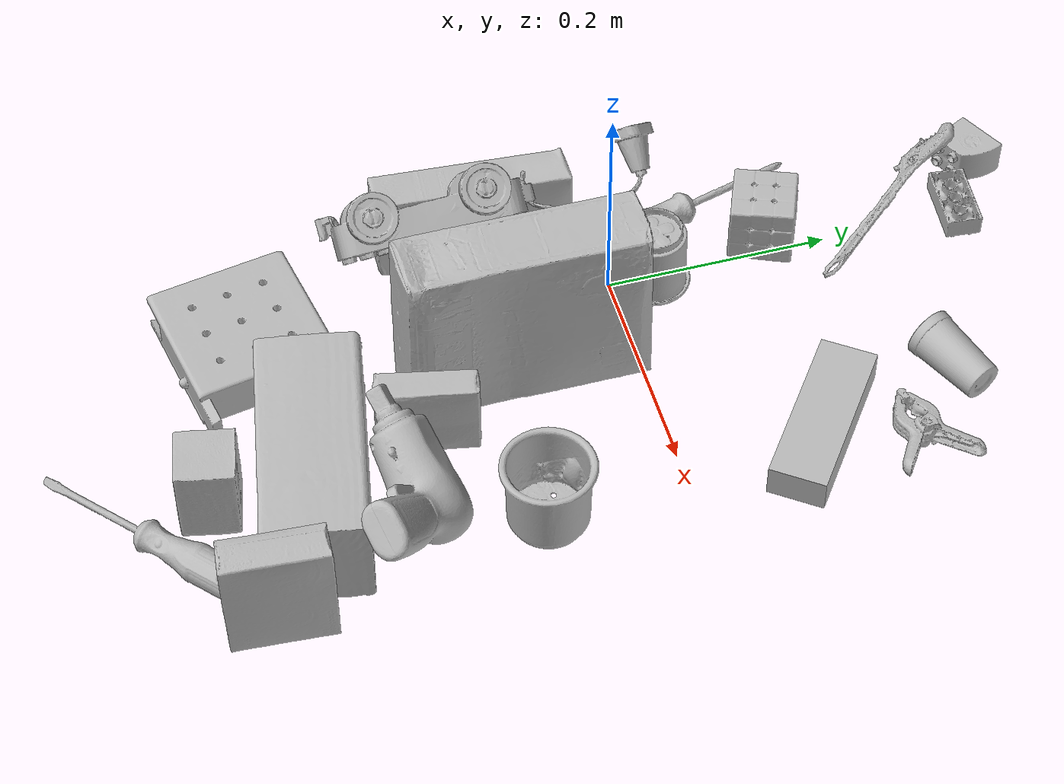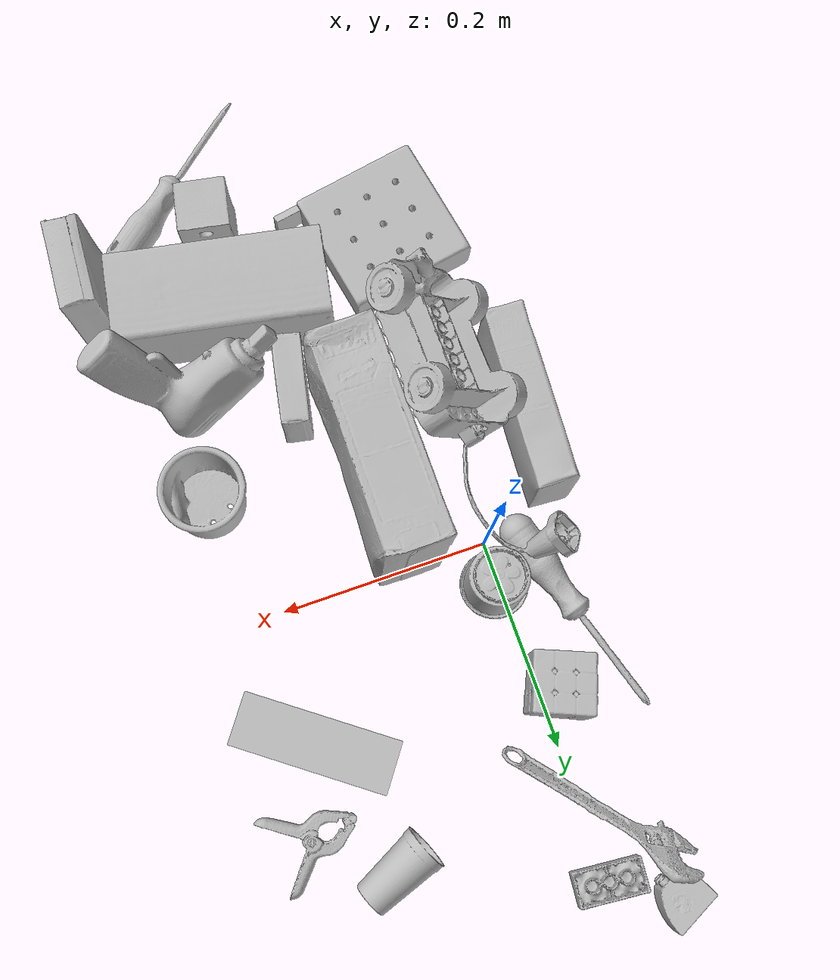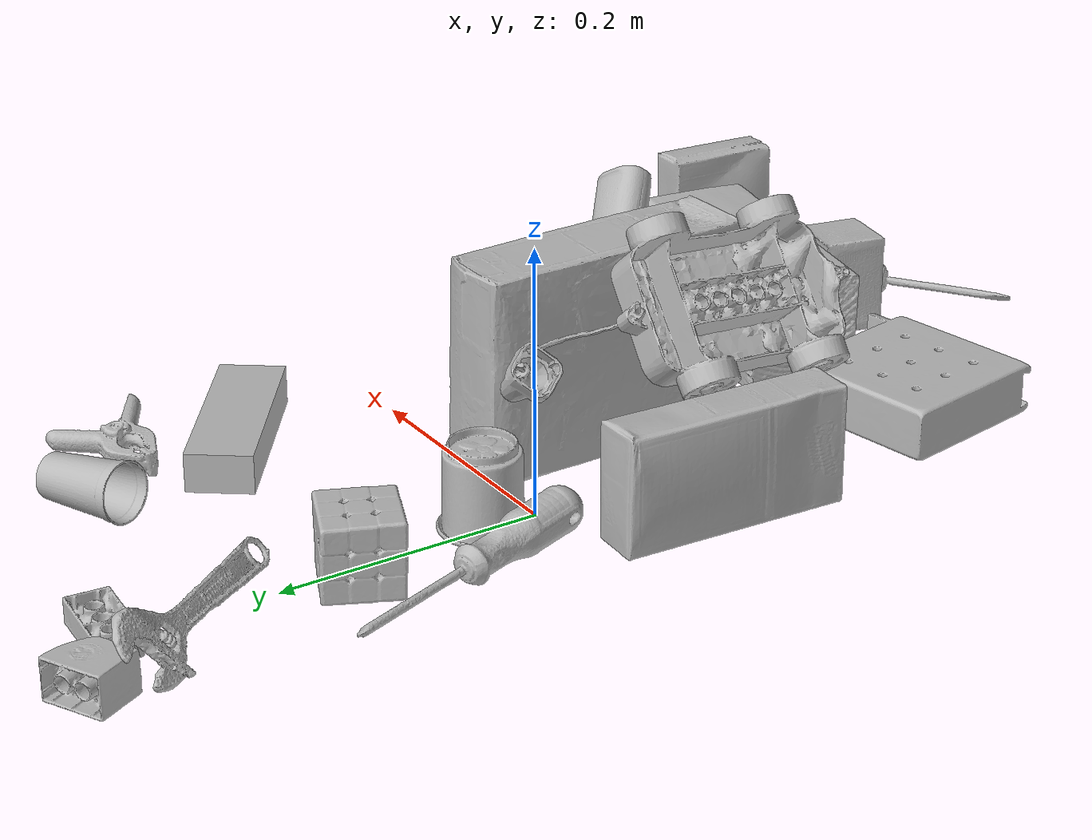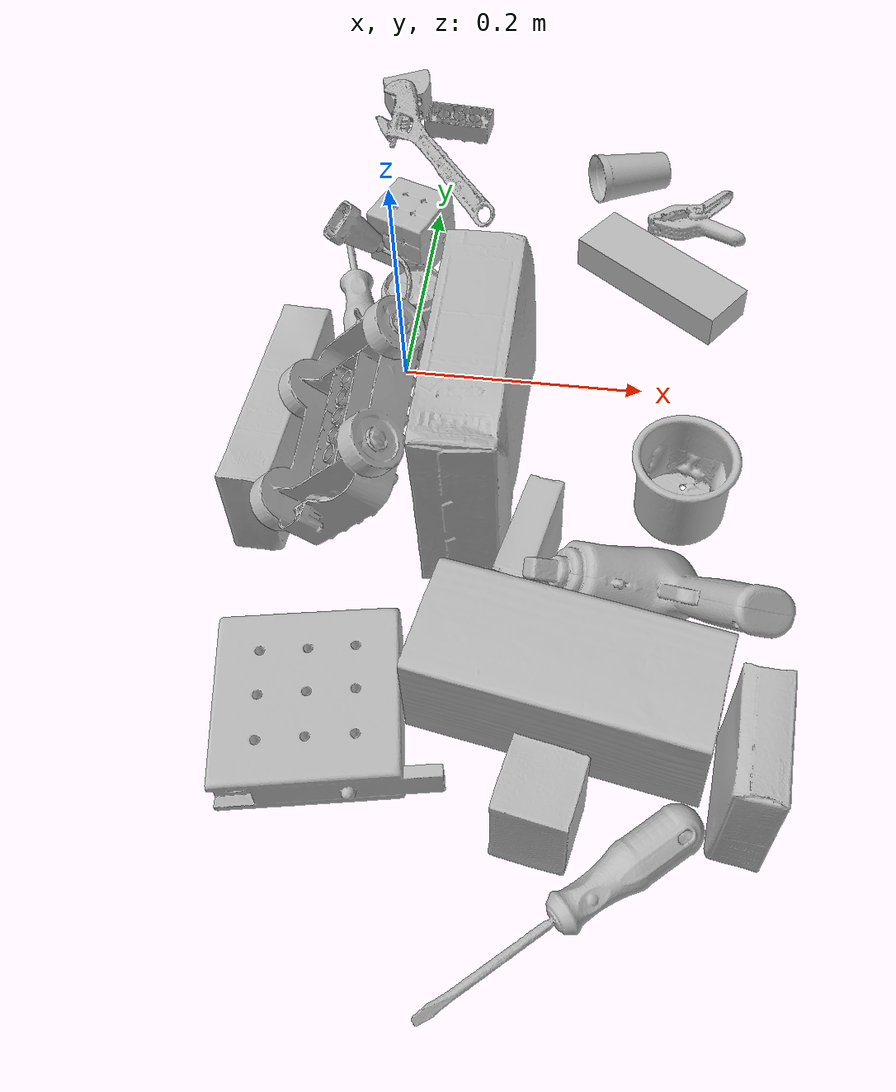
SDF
<sdf version="1.4">
  <world name="default">
    <light name="light1" type="point">
      <pose>0 0 1 0 0 0</pose>
      <diffuse>3 3 3 1</diffuse>
      <specular>3 3 3 1</specular>
    </light>
    <light name="light2" type="point">
      <pose>0 0.5 2 0 0 0</pose>
      <diffuse>1 1 1 1</diffuse>
      <specular>1 1 1 1</specular>
    </light>
    <light name="light3" type="point">
      <pose>0 0.5 2 0 0 0</pose>
      <diffuse>3 3 3 1</diffuse>
      <specular>3 3 3 1</specular>
    </light>
    <scene>
      <ambient>0.7 0.7 0.7</ambient>
    </scene>
    <model name="box21">
      <link name="link_box21">
        <collision name="default">
          <geometry>
            <mesh>
              <uri>model://cracker_box/collision_meshes/collision.obj</uri>
              <scale>1.0 1.0 1.0</scale>
            </mesh>
          </geometry>
          <surface>
            <friction>
              <ode>
                <mu>0.5</mu>
                <mu2>0.5</mu2>
              </ode>
            </friction>
          <contact>
        <ode>
            <max_vel>0</max_vel>
            <min_depth>0.0001</min_depth>
            <kp>1e8</kp>
        </ode>
    </contact></surface>
        </collision>
        <visual name="default">
          <geometry>
            <mesh>
              <uri>model://cracker_box/visual_meshes/visual.dae</uri>
              <scale>1.0 1.0 1.0</scale>
            </mesh>
          </geometry>
        </visual>
        <inertial>
          <mass>2.967785358428955</mass>
          <pose>0.0009464151808060706 0.00025434247800149024 -0.0017029535956680775 -0.0003162076618733006 -0.011106490531610344 0.00254679570085012</pose>
          <inertia>
            <ixx>0.0075487206</ixx>
            <iyy>0.012464421</iyy>
            <izz>0.017787872</izz>
            <ixy>0</ixy>
            <ixz>0</ixz>
            <iyz>0</iyz>
          </inertia>
        </inertial>
      </link>
      <pose>0.0756118968129158 -0.09781506657600403 0.08175773918628693 1.5452477256240764 0.009042281381224246 1.5849774499999025</pose>
    </model>
    <model name="box22">
      <link name="link_box22">
        <collision name="default">
          <geometry>
            <mesh>
              <uri>model://rubiks_cube/collision_meshes/collision.obj</uri>
              <scale>1.0 1.0 1.0</scale>
            </mesh>
          </geometry>
          <surface>
            <friction>
              <ode>
                <mu>0.5</mu>
                <mu2>0.5</mu2>
              </ode>
            </friction>
          <contact>
        <ode>
            <max_vel>0</max_vel>
            <min_depth>0.0001</min_depth>
            <kp>1e8</kp>
        </ode>
    </contact></surface>
        </collision>
        <visual name="default">
          <geometry>
            <mesh>
              <uri>model://rubiks_cube/visual_meshes/visual.dae</uri>
              <scale>1.0 1.0 1.0</scale>
            </mesh>
          </geometry>
        </visual>
        <inertial>
          <mass>0.2631562352180481</mass>
          <pose>2.6721041649580002e-05 5.2569666877388954e-05 -7.264316082000732e-06 -0.05467275409565722 -0.09814109117242276 -0.03445701547045584</pose>
          <inertia>
            <ixx>0.0001454115</ixx>
            <iyy>0.00014473335</iyy>
            <izz>0.00014661645</izz>
            <ixy>0</ixy>
            <ixz>0</ixz>
            <iyz>0</iyz>
          </inertia>
        </inertial>
      </link>
      <pose>-0.017463166266679764 0.14793449640274048 0.029059724882245064 -3.134139698054055 0.01089227175683781 -1.9947734591894615</pose>
    </model>
    <model name="box23">
      <link name="link_box23">
        <collision name="default">
          <geometry>
            <mesh>
              <uri>model://pudding_box/collision_meshes/collision.obj</uri>
              <scale>1.0 1.0 1.0</scale>
            </mesh>
          </geometry>
          <surface>
            <friction>
              <ode>
                <mu>0.5</mu>
                <mu2>0.5</mu2>
              </ode>
            </friction>
          <contact>
        <ode>
            <max_vel>0</max_vel>
            <min_depth>0.0001</min_depth>
            <kp>1e8</kp>
        </ode>
    </contact></surface>
        </collision>
        <visual name="default">
          <geometry>
            <mesh>
              <uri>model://pudding_box/visual_meshes/visual.dae</uri>
              <scale>1.0 1.0 1.0</scale>
            </mesh>
          </geometry>
        </visual>
        <inertial>
          <mass>0.41353368759155273</mass>
          <pose>0.0004894821904599667 0.0008067885646596551 -0.0005188827635720372 0.005213101814074476 -0.006603797777454713 0.020079821436089117</pose>
          <inertia>
            <ixx>0.0004674785</ixx>
            <iyy>0.00031452288</iyy>
            <izz>0.0006903542</izz>
            <ixy>0</ixy>
            <ixz>0</ixz>
            <iyz>0</iyz>
          </inertia>
        </inertial>
      </link>
      <pose>0.28094688057899475 -0.35370123386383057 0.056901462376117706 -1.6101271841732325 0.004998490621426188 -1.6621378054333578</pose>
    </model>
    <model name="cup1">
      <link name="link_cup1">
        <collision name="default">
          <geometry>
            <mesh>
              <uri>model://cup_small/collision_meshes/collision.obj</uri>
              <scale>1.0 1.0 1.0</scale>
            </mesh>
          </geometry>
          <surface>
            <friction>
              <ode>
                <mu>0.5</mu>
                <mu2>0.5</mu2>
              </ode>
            </friction>
          <contact>
        <ode>
            <max_vel>0</max_vel>
            <min_depth>0.0001</min_depth>
            <kp>1e8</kp>
        </ode>
    </contact></surface>
        </collision>
        <visual name="default">
          <geometry>
            <mesh>
              <uri>model://cup_small/visual_meshes/visual.dae</uri>
              <scale>1.0 1.0 1.0</scale>
            </mesh>
          </geometry>
        </visual>
        <inertial>
          <mass>0.02095564641058445</mass>
          <pose>0.00010482477955520153 -0.0003377848770469427 -0.01074282731860876 -0.011492722259696445 -0.015280529703091471 -0.5058449819350237</pose>
          <inertia>
            <ixx>1.2338362e-05</ixx>
            <iyy>1.240201e-05</iyy>
            <izz>5.5708097e-06</izz>
            <ixy>0</ixy>
            <ixz>0</ixz>
            <iyz>0</iyz>
          </inertia>
        </inertial>
      </link>
      <pose>0.17629976570606232 0.2554238736629486 0.020168503746390343 1.4933418707048363 -0.07879172943851444 -1.1580702095510558</pose>
    </model>
    <model name="cup2">
      <link name="link_cup2">
        <collision name="default">
          <geometry>
            <mesh>
              <uri>model://c_cups/collision_meshes/collision.obj</uri>
              <scale>1.0 1.0 1.0</scale>
            </mesh>
          </geometry>
          <surface>
            <friction>
              <ode>
                <mu>0.5</mu>
                <mu2>0.5</mu2>
              </ode>
            </friction>
          <contact>
        <ode>
            <max_vel>0</max_vel>
            <min_depth>0.0001</min_depth>
            <kp>1e8</kp>
        </ode>
    </contact></surface>
        </collision>
        <visual name="default">
          <geometry>
            <mesh>
              <uri>model://c_cups/visual_meshes/visual.dae</uri>
              <scale>1.0 1.0 1.0</scale>
            </mesh>
          </geometry>
        </visual>
        <inertial>
          <mass>0.04905003309249878</mass>
          <pose>0.0007237255922518671 0.0020153908990323544 -0.0012750986497849226 0.30215813246853196 0.013461388587527759 -0.08771773533446486</pose>
          <inertia>
            <ixx>3.6477843e-05</ixx>
            <iyy>3.583322e-05</iyy>
            <izz>3.225985e-05</izz>
            <ixy>0</ixy>
            <ixz>0</ixz>
            <iyz>0</iyz>
          </inertia>
        </inertial>
      </link>
      <pose>0.004249277524650097 0.040042296051979065 0.03345801308751106 3.1415925514478475 6.247220056161047e-08 -1.8567974530776203</pose>
    </model>
    <model name="box11">
      <link name="link_box11">
        <collision name="default">
          <geometry>
            <mesh>
              <uri>model://sugar_box/collision_meshes/collision.obj</uri>
              <scale>1.0 1.0 1.0</scale>
            </mesh>
          </geometry>
          <surface>
            <friction>
              <ode>
                <mu>0.5</mu>
                <mu2>0.5</mu2>
              </ode>
            </friction>
          <contact>
        <ode>
            <max_vel>0</max_vel>
            <min_depth>0.0001</min_depth>
            <kp>1e8</kp>
        </ode>
    </contact></surface>
        </collision>
        <visual name="default">
          <geometry>
            <mesh>
              <uri>model://sugar_box/visual_meshes/visual.dae</uri>
              <scale>1.0 1.0 1.0</scale>
            </mesh>
          </geometry>
        </visual>
        <inertial>
          <mass>0.9405714869499207</mass>
          <pose>0.0010343727190047503 3.849109634757042e-05 -0.0003636480832938105 -0.00040462618385709627 0.0010506635220579009 0.0026153790218148127</pose>
          <inertia>
            <ixx>0.0007836817</ixx>
            <iyy>0.0025330195</iyy>
            <izz>0.0030323272</izz>
            <ixy>0</ixy>
            <ixz>0</ixz>
            <iyz>0</iyz>
          </inertia>
        </inertial>
      </link>
      <pose>-0.07602038234472275 -0.10477802902460098 0.046014465391635895 1.5761508270668532 0.0062404854494763524 1.5129116720298788</pose>
    </model>
    <model name="box12">
      <link name="link_box12">
        <collision name="default">
          <geometry>
            <mesh>
              <uri>model://jenga/collision_meshes/collision.obj</uri>
              <scale>1.0 1.0 1.0</scale>
            </mesh>
          </geometry>
          <surface>
            <friction>
              <ode>
                <mu>0.5</mu>
                <mu2>0.5</mu2>
              </ode>
            </friction>
          <contact>
        <ode>
            <max_vel>0</max_vel>
            <min_depth>0.0001</min_depth>
            <kp>1e8</kp>
        </ode>
    </contact></surface>
        </collision>
        <visual name="default">
          <geometry>
            <mesh>
              <uri>model://jenga/visual_meshes/visual.dae</uri>
              <scale>1.0 1.0 1.0</scale>
            </mesh>
          </geometry>
        </visual>
        <inertial>
          <mass>0.2285791039466858</mass>
          <pose>-2.502855807051674e-07 -0.00010250010382151231 -4.0923405322246253e-05 0.0 -7.342155186052628e-07 0.0</pose>
          <inertia>
            <ixx>6.3253385e-05</ixx>
            <iyy>0.00042860323</iyy>
            <izz>0.00045757034</izz>
            <ixy>0</ixy>
            <ixz>0</ixz>
            <iyz>0</iyz>
          </inertia>
        </inertial>
      </link>
      <pose>0.20948952436447144 0.12429886311292648 0.014999994076788425 -2.8494708222202673e-09 3.5918925044168658e-09 2.505853092075925</pose>
    </model>
    <model name="box13">
      <link name="link_box13">
        <collision name="default">
          <geometry>
            <mesh>
              <uri>model://wood_block/collision_meshes/collision.obj</uri>
              <scale>1.0 1.0 1.0</scale>
            </mesh>
          </geometry>
          <surface>
            <friction>
              <ode>
                <mu>0.5</mu>
                <mu2>0.5</mu2>
              </ode>
            </friction>
          <contact>
        <ode>
            <max_vel>0</max_vel>
            <min_depth>0.0001</min_depth>
            <kp>1e8</kp>
        </ode>
    </contact></surface>
        </collision>
        <visual name="default">
          <geometry>
            <mesh>
              <uri>model://wood_block/visual_meshes/visual.dae</uri>
              <scale>1.0 1.0 1.0</scale>
            </mesh>
          </geometry>
        </visual>
        <inertial>
          <mass>1.608048677444458</mass>
          <pose>-5.813315056002466e-06 -0.000570809468626976 0.0002640858292579651 -0.05220975529066727 -0.005192695547513155 -0.006861377927637377</pose>
          <inertia>
            <ixx>0.002151813</ixx>
            <iyy>0.006797577</iyy>
            <izz>0.0067721503</izz>
            <ixy>0</ixy>
            <ixz>0</ixz>
            <iyz>0</iyz>
          </inertia>
        </inertial>
      </link>
      <pose>0.1604907065629959 -0.2993132472038269 0.0452585332095623 -0.00520921301757838 0.0057187328420509435 2.9593037464453222</pose>
    </model>
    <model name="box14">
      <link name="link_box14">
        <collision name="default">
          <geometry>
            <mesh>
              <uri>model://gelatin_box/collision_meshes/collision.obj</uri>
              <scale>1.0 1.0 1.0</scale>
            </mesh>
          </geometry>
          <surface>
            <friction>
              <ode>
                <mu>0.5</mu>
                <mu2>0.5</mu2>
              </ode>
            </friction>
          <contact>
        <ode>
            <max_vel>0</max_vel>
            <min_depth>0.0001</min_depth>
            <kp>1e8</kp>
        </ode>
    </contact></surface>
        </collision>
        <visual name="default">
          <geometry>
            <mesh>
              <uri>model://gelatin_box/visual_meshes/visual.dae</uri>
              <scale>1.0 1.0 1.0</scale>
            </mesh>
          </geometry>
        </visual>
        <inertial>
          <mass>0.228233203291893</mass>
          <pose>0.0004319618456065655 0.00011156871914863586 -0.0003640321083366871 -0.0010503721031013481 -0.004755817754301117 0.016440566922732165</pose>
          <inertia>
            <ixx>0.000161114</ixx>
            <iyy>0.0001150829</iyy>
            <izz>0.0002452514</izz>
            <ixy>0</ixy>
            <ixz>0</ixz>
            <iyz>0</iyz>
          </inertia>
        </inertial>
      </link>
      <pose>0.12520818412303925 -0.19549289345741272 0.03674649819731712 -1.424357713175683 1.5631988822143374 -1.6290282014818243</pose>
    </model>
    <model name="cup15">
      <link name="link_cup15">
        <collision name="default">
          <geometry>
            <mesh>
              <uri>model://f_cups/collision_meshes/collision.obj</uri>
              <scale>1.0 1.0 1.0</scale>
            </mesh>
          </geometry>
          <surface>
            <friction>
              <ode>
                <mu>0.5</mu>
                <mu2>0.5</mu2>
              </ode>
            </friction>
          <contact>
        <ode>
            <max_vel>0</max_vel>
            <min_depth>0.0001</min_depth>
            <kp>1e8</kp>
        </ode>
    </contact></surface>
        </collision>
        <visual name="default">
          <geometry>
            <mesh>
              <uri>model://f_cups/visual_meshes/visual.dae</uri>
              <scale>1.0 1.0 1.0</scale>
            </mesh>
          </geometry>
        </visual>
        <inertial>
          <mass>0.05267045274376869</mass>
          <pose>-0.003171468386426568 -0.0006240073125809431 -0.003655537962913513 0.7862325736201227 -0.2607934836260618 -0.18237270236977254</pose>
          <inertia>
            <ixx>4.9511644e-05</ixx>
            <iyy>5.193826e-05</iyy>
            <izz>5.4069198e-05</izz>
            <ixy>0</ixy>
            <ixz>0</ixz>
            <iyz>0</iyz>
          </inertia>
        </inertial>
      </link>
      <pose>0.2335502952337265 -0.1212979406118393 0.0363059900701046 6.09075105906244e-08 -5.445632078202637e-08 2.9653745712379473</pose>
    </model>
    <model name="toy1">
      <link name="link_toy1">
        <collision name="default">
          <geometry>
            <mesh>
              <uri>model://g_lego_duplo/collision_meshes/collision.obj</uri>
              <scale>1.0 1.0 1.0</scale>
            </mesh>
          </geometry>
          <surface>
            <friction>
              <ode>
                <mu>0.5</mu>
                <mu2>0.5</mu2>
              </ode>
            </friction>
          <contact>
        <ode>
            <max_vel>0</max_vel>
            <min_depth>0.0001</min_depth>
            <kp>1e8</kp>
        </ode>
    </contact></surface>
        </collision>
        <visual name="default">
          <geometry>
            <mesh>
              <uri>model://g_lego_duplo/visual_meshes/visual.dae</uri>
              <scale>1.0 1.0 1.0</scale>
            </mesh>
          </geometry>
        </visual>
        <inertial>
          <mass>0.5557854771614075</mass>
          <pose>-0.050047677010297775 0.0017554635414853692 0.0038806761149317026 0.01096300832625367 0.038108254431045284 -0.0965302354071939</pose>
          <inertia>
            <ixx>0.0008053398</ixx>
            <iyy>0.0024348022</iyy>
            <izz>0.003046027</izz>
            <ixy>0</ixy>
            <ixz>0</ixz>
            <iyz>0</iyz>
          </inertia>
        </inertial>
      </link>
      <pose>-0.010354132391512394 -0.09953095018863678 0.1301354169845581 2.2933698786755135 -0.0730992175129296 1.5761877795533483</pose>
    </model>
    <model name="toy2">
      <link name="link_toy2">
        <collision name="default">
          <geometry>
            <mesh>
              <uri>model://b_toy_airplane/collision_meshes/collision.obj</uri>
              <scale>1.0 1.0 1.0</scale>
            </mesh>
          </geometry>
          <surface>
            <friction>
              <ode>
                <mu>0.5</mu>
                <mu2>0.5</mu2>
              </ode>
            </friction>
          <contact>
        <ode>
            <max_vel>0</max_vel>
            <min_depth>0.0001</min_depth>
            <kp>1e8</kp>
        </ode>
    </contact></surface>
        </collision>
        <visual name="default">
          <geometry>
            <mesh>
              <uri>model://b_toy_airplane/visual_meshes/visual.dae</uri>
              <scale>1.0 1.0 1.0</scale>
            </mesh>
          </geometry>
        </visual>
        <inertial>
          <mass>0.5134223699569702</mass>
          <pose>0.00508136348798871 0.004015584941953421 0.009543065913021564 -0.0400181167848636 -0.04022184003740235 -0.5601502230799963</pose>
          <inertia>
            <ixx>0.00095317804</ixx>
            <iyy>0.00038099466</iyy>
            <izz>0.0011858484</izz>
            <ixy>0</ixy>
            <ixz>0</ixz>
            <iyz>0</iyz>
          </inertia>
        </inertial>
      </link>
      <pose>0.22413676977157593 -0.22083531320095062 0.06104817986488342 -2.197518376649127 -0.531286345629719 -2.875563092907905</pose>
    </model>
    <model name="toy3">
      <link name="link_toy3">
        <collision name="default">
          <geometry>
            <mesh>
              <uri>model://foam_brick/collision_meshes/collision.obj</uri>
              <scale>1.0 1.0 1.0</scale>
            </mesh>
          </geometry>
          <surface>
            <friction>
              <ode>
                <mu>0.5</mu>
                <mu2>0.5</mu2>
              </ode>
            </friction>
          <contact>
        <ode>
            <max_vel>0</max_vel>
            <min_depth>0.0001</min_depth>
            <kp>1e8</kp>
        </ode>
    </contact></surface>
        </collision>
        <visual name="default">
          <geometry>
            <mesh>
              <uri>model://foam_brick/visual_meshes/visual.dae</uri>
              <scale>1.0 1.0 1.0</scale>
            </mesh>
          </geometry>
        </visual>
        <inertial>
          <mass>0.10737738013267517</mass>
          <pose>-0.0002522472059354186 0.00034584314562380314 -0.0002532101352699101 -0.29401713280371045 0.01727443708188723 -0.0007449863066790336</pose>
          <inertia>
            <ixx>4.6904443e-05</ixx>
            <iyy>7.488536e-05</iyy>
            <izz>7.583706e-05</izz>
            <ixy>0</ixy>
            <ixz>0</ixz>
            <iyz>0</iyz>
          </inertia>
        </inertial>
      </link>
      <pose>0.15034259855747223 -0.3850567042827606 0.03830837085843086 2.0103121362428875 1.5521821417774104 -2.9022576634038493</pose>
    </model>
    <model name="toy4">
      <link name="link_toy4">
        <collision name="default">
          <geometry>
            <mesh>
              <uri>model://c_lego_duplo/collision_meshes/collision.obj</uri>
              <scale>1.0 1.0 1.0</scale>
            </mesh>
          </geometry>
          <surface>
            <friction>
              <ode>
                <mu>0.5</mu>
                <mu2>0.5</mu2>
              </ode>
            </friction>
          <contact>
        <ode>
            <max_vel>0</max_vel>
            <min_depth>0.0001</min_depth>
            <kp>1e8</kp>
        </ode>
    </contact></surface>
        </collision>
        <visual name="default">
          <geometry>
            <mesh>
              <uri>model://c_lego_duplo/visual_meshes/visual.dae</uri>
              <scale>1.0 1.0 1.0</scale>
            </mesh>
          </geometry>
        </visual>
        <inertial>
          <mass>0.0418582409620285</mass>
          <pose>0.00031645974377170205 0.00019464627257548273 0.0010453157592564821 -0.011520806412656213 0.005900100982121691 0.03110035028309464</pose>
          <inertia>
            <ixx>1.6107831e-05</ixx>
            <iyy>5.145423e-06</iyy>
            <izz>1.8823655e-05</izz>
            <ixy>0</ixy>
            <ixz>0</ixz>
            <iyz>0</iyz>
          </inertia>
        </inertial>
      </link>
      <pose>0.0012014798121526837 0.32434117794036865 0.011916563846170902 -3.135037275306493 -0.00021306502785824403 -1.6388816598474727</pose>
    </model>
    <model name="toy5">
      <link name="link_toy5">
        <collision name="default">
          <geometry>
            <mesh>
              <uri>model://nine_hole_peg_test/collision_meshes/collision.obj</uri>
              <scale>1.0 1.0 1.0</scale>
            </mesh>
          </geometry>
          <surface>
            <friction>
              <ode>
                <mu>0.5</mu>
                <mu2>0.5</mu2>
              </ode>
            </friction>
          <contact>
        <ode>
            <max_vel>0</max_vel>
            <min_depth>0.0001</min_depth>
            <kp>1e8</kp>
        </ode>
    </contact></surface>
        </collision>
        <visual name="default">
          <geometry>
            <mesh>
              <uri>model://nine_hole_peg_test/visual_meshes/visual.dae</uri>
              <scale>1.0 1.0 1.0</scale>
            </mesh>
          </geometry>
        </visual>
        <inertial>
          <mass>0.44585999846458435</mass>
          <pose>-0.004617387428879738 -0.009647615253925323 2.6460689696250483e-05 -0.001466677754783098 0.0007194209279192062 -0.6342398490080472</pose>
          <inertia>
            <ixx>0.0006971755</ixx>
            <iyy>0.0006509454</iyy>
            <izz>0.0012216569</izz>
            <ixy>0</ixy>
            <ixz>0</ixz>
            <iyz>0</iyz>
          </inertia>
        </inertial>
      </link>
      <pose>-0.00029614754021167755 -0.3276836574077606 0.020771009847521782 1.5949130719403817e-08 1.0132514765331092e-08 -1.3863877079790001</pose>
    </model>
    <model name="toy6">
      <link name="link_toy6">
        <collision name="default">
          <geometry>
            <mesh>
              <uri>model://d_lego_duplo/collision_meshes/collision.obj</uri>
              <scale>1.0 1.0 1.0</scale>
            </mesh>
          </geometry>
          <surface>
            <friction>
              <ode>
                <mu>0.5</mu>
                <mu2>0.5</mu2>
              </ode>
            </friction>
          <contact>
        <ode>
            <max_vel>0</max_vel>
            <min_depth>0.0001</min_depth>
            <kp>1e8</kp>
        </ode>
    </contact></surface>
        </collision>
        <visual name="default">
          <geometry>
            <mesh>
              <uri>model://d_lego_duplo/visual_meshes/visual.dae</uri>
              <scale>1.0 1.0 1.0</scale>
            </mesh>
          </geometry>
        </visual>
        <inertial>
          <mass>0.03287249803543091</mass>
          <pose>0.00283056334592402 0.0001636616507312283 0.000858980929479003 0.08010843587180921 -0.38355193616427774 0.0010296778305230027</pose>
          <inertia>
            <ixx>6.363631e-06</ixx>
            <iyy>9.031719e-06</iyy>
            <izz>8.709827e-06</izz>
            <ixy>0</ixy>
            <ixz>0</ixz>
            <iyz>0</iyz>
          </inertia>
        </inertial>
      </link>
      <pose>-0.051351264119148254 0.35462990403175354 0.016400910913944244 -1.5643150998990576 -0.0023546207198594767 -2.6759895991617966</pose>
    </model>
    <model name="hardware1">
      <link name="link_hardware1">
        <collision name="default">
          <geometry>
            <mesh>
              <uri>model://phillips_screwdriver/collision_meshes/collision.obj</uri>
              <scale>1.0 1.0 1.0</scale>
            </mesh>
          </geometry>
          <surface>
            <friction>
              <ode>
                <mu>0.5</mu>
                <mu2>0.5</mu2>
              </ode>
            </friction>
          <contact>
        <ode>
            <max_vel>0</max_vel>
            <min_depth>0.0001</min_depth>
            <kp>1e8</kp>
        </ode>
    </contact></surface>
        </collision>
        <visual name="default">
          <geometry>
            <mesh>
              <uri>model://phillips_screwdriver/visual_meshes/visual.dae</uri>
              <scale>1.0 1.0 1.0</scale>
            </mesh>
          </geometry>
        </visual>
        <inertial>
          <mass>0.05929635465145111</mass>
          <pose>-0.04777182266116142 0.0010362300090491772 -0.00045555492397397757 -0.15720933335137202 0.005850991845378533 -0.002156742438797471</pose>
          <inertia>
            <ixx>6.9667135e-06</ixx>
            <iyy>8.735042e-05</iyy>
            <izz>8.742465e-05</izz>
            <ixy>0</ixy>
            <ixz>0</ixz>
            <iyz>0</iyz>
          </inertia>
        </inertial>
      </link>
      <pose>-0.05719098448753357 0.08626039326190948 0.015680385753512383 -0.08976111358468088 0.041400266776021856 1.8750275696803016</pose>
    </model>
    <model name="hardware2">
      <link name="link_hardware2">
        <collision name="default">
          <geometry>
            <mesh>
              <uri>model://flat_screwdriver/collision_meshes/collision.obj</uri>
              <scale>1.0 1.0 1.0</scale>
            </mesh>
          </geometry>
          <surface>
            <friction>
              <ode>
                <mu>0.5</mu>
                <mu2>0.5</mu2>
              </ode>
            </friction>
          <contact>
        <ode>
            <max_vel>0</max_vel>
            <min_depth>0.0001</min_depth>
            <kp>1e8</kp>
        </ode>
    </contact></surface>
        </collision>
        <visual name="default">
          <geometry>
            <mesh>
              <uri>model://flat_screwdriver/visual_meshes/visual.dae</uri>
              <scale>1.0 1.0 1.0</scale>
            </mesh>
          </geometry>
        </visual>
        <inertial>
          <mass>0.08023945242166519</mass>
          <pose>-0.0489187017083168 -0.0006576800369657576 -0.000614091579336673 -0.561358306335632 -0.0032337267228942767 0.006982275729110292</pose>
          <inertia>
            <ixx>9.4802335e-06</ixx>
            <iyy>0.00012035375</iyy>
            <izz>0.00012029803</izz>
            <ixy>0</ixy>
            <ixz>0</ixz>
            <iyz>0</iyz>
          </inertia>
        </inertial>
      </link>
      <pose>0.17220869660377502 -0.44221287965774536 0.014899787493050098 -0.8471322690585271 0.03782759471682405 -2.4369358344127257</pose>
    </model>
    <model name="hardware3">
      <link name="link_hardware3">
        <collision name="default">
          <geometry>
            <mesh>
              <uri>model://medium_clamp/collision_meshes/collision.obj</uri>
              <scale>1.0 1.0 1.0</scale>
            </mesh>
          </geometry>
          <surface>
            <friction>
              <ode>
                <mu>0.5</mu>
                <mu2>0.5</mu2>
              </ode>
            </friction>
          <contact>
        <ode>
            <max_vel>0</max_vel>
            <min_depth>0.0001</min_depth>
            <kp>1e8</kp>
        </ode>
    </contact></surface>
        </collision>
        <visual name="default">
          <geometry>
            <mesh>
              <uri>model://medium_clamp/visual_meshes/visual.dae</uri>
              <scale>1.0 1.0 1.0</scale>
            </mesh>
          </geometry>
        </visual>
        <inertial>
          <mass>0.025976430624723434</mass>
          <pose>0.0053909942507743835 0.0003953239065594971 -0.0001222159480676055 -0.001226907020768324 0.0025845009771016812 0.038207788380880015</pose>
          <inertia>
            <ixx>7.0769133e-06</ixx>
            <iyy>1.02989125e-05</iyy>
            <izz>1.5863408e-05</izz>
            <ixy>0</ixy>
            <ixz>0</ixz>
            <iyz>0</iyz>
          </inertia>
        </inertial>
      </link>
      <pose>0.2413937747478485 0.20337353646755219 0.013314715586602688 -3.0195302451207247 0.07747259470563078 -2.9873617406397264</pose>
    </model>
    <model name="hardware4">
      <link name="link_hardware4">
        <collision name="default">
          <geometry>
            <mesh>
              <uri>model://adjustable_wrench/collision_meshes/collision.obj</uri>
              <scale>1.0 1.0 1.0</scale>
            </mesh>
          </geometry>
          <surface>
            <friction>
              <ode>
                <mu>0.5</mu>
                <mu2>0.5</mu2>
              </ode>
            </friction>
          <contact>
        <ode>
            <max_vel>0</max_vel>
            <min_depth>0.0001</min_depth>
            <kp>1e8</kp>
        </ode>
    </contact></surface>
        </collision>
        <visual name="default">
          <geometry>
            <mesh>
              <uri>model://adjustable_wrench/visual_meshes/visual.dae</uri>
              <scale>1.0 1.0 1.0</scale>
            </mesh>
          </geometry>
        </visual>
        <inertial>
          <mass>0.023418840020895004</mass>
          <pose>0.03740980848670006 -0.00289688678458333 -0.0011149229248985648 -0.014473354604289867 0.006656022134877207 -0.010954199158636425</pose>
          <inertia>
            <ixx>4.793005e-06</ixx>
            <iyy>5.609652e-05</iyy>
            <izz>6.0634928e-05</izz>
            <ixy>0</ixy>
            <ixz>0</ixz>
            <iyz>0</iyz>
          </inertia>
        </inertial>
      </link>
      <pose>-0.018402734771370888 0.265520304441452 0.018150581046938896 -0.8995756917087027 -0.12225761531293243 2.2504385876872295</pose>
    </model>
  <physics type="ode">
      <max_contacts>50</max_contacts>
      <ode>
        <solver>
          <type>quick</type>
          <iters>75</iters>
        </solver>
        <constraints>
          <contact_max_correcting_vel>0</contact_max_correcting_vel>
          <contact_surface_layer>0</contact_surface_layer>
        </constraints>
      </ode>
    </physics></world>
</sdf>
